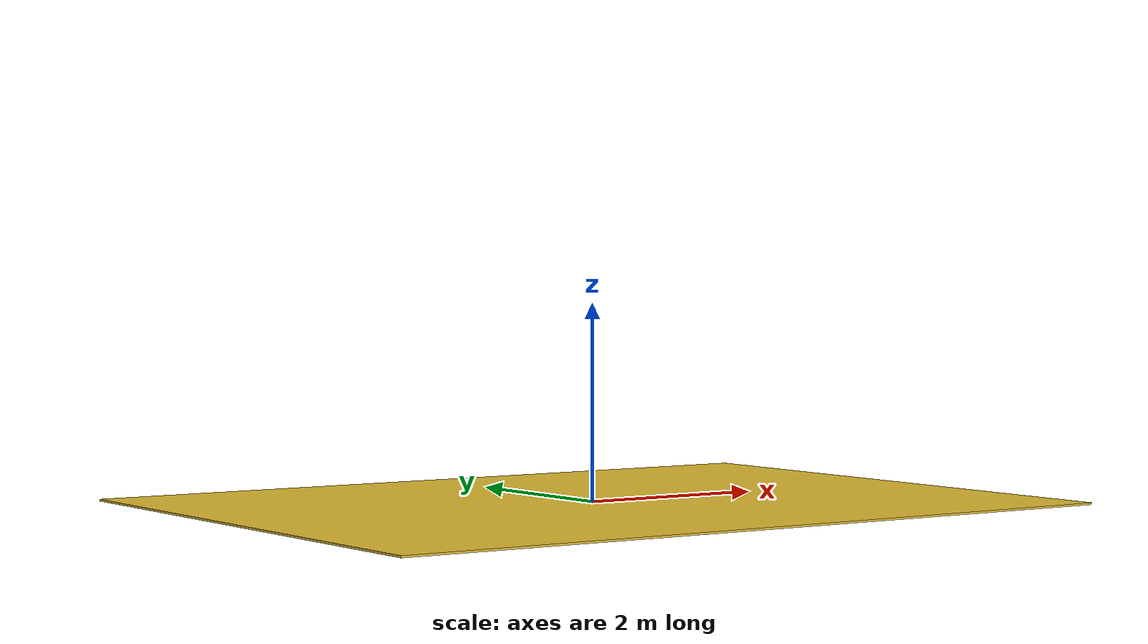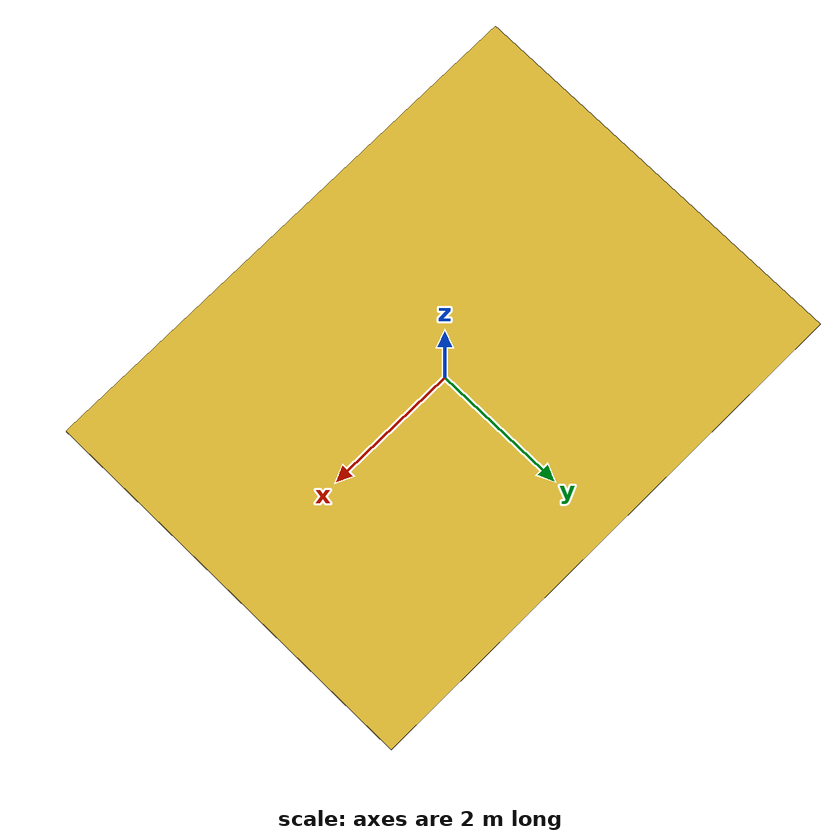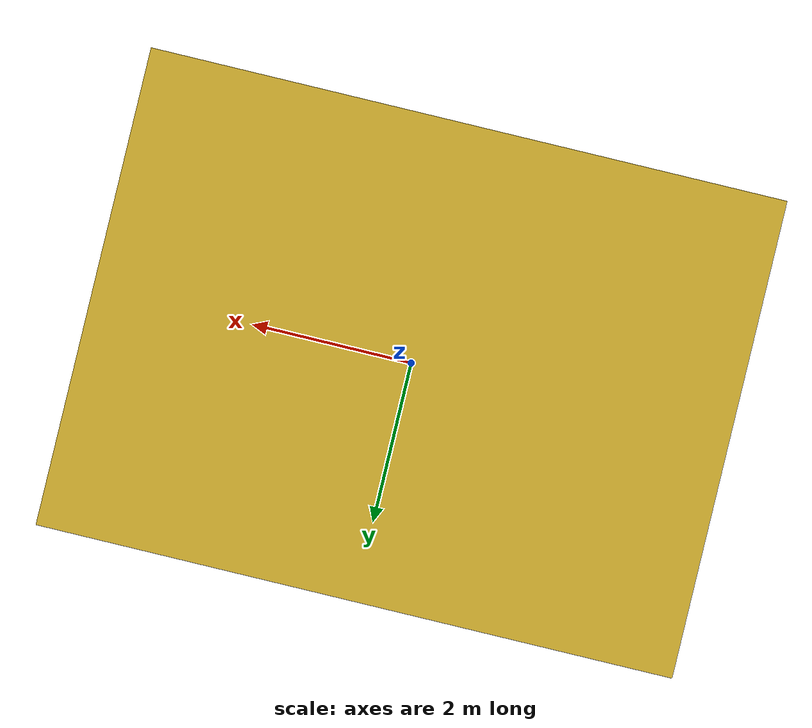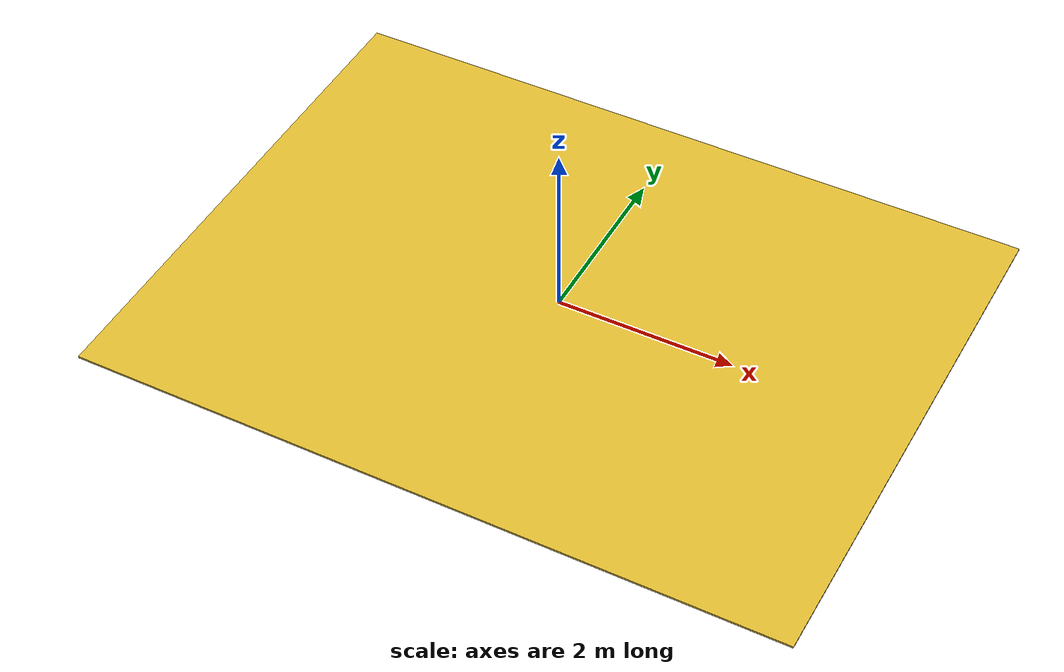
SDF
<sdf version="1.10">
  <model name="loading_zone">
    <static>true</static>
    <link name="link">
      <visual name="visual">
        <geometry>
          <box><size>8 6 0.02</size></box>
        </geometry>
        <material>
          <ambient>0.9 0.75 0.2 1</ambient>
          <diffuse>0.9 0.75 0.2 1</diffuse>
        </material>
      </visual>
    </link>
  </model>
</sdf>
